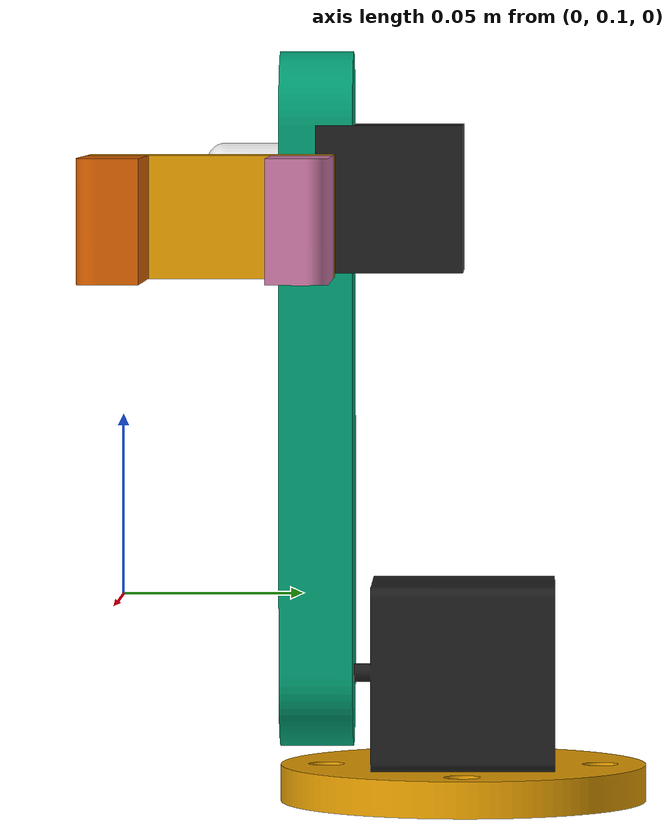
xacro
<?xml version="1.0" ?>
<robot name="arm" xmlns:xacro="http://www.ros.org/wiki/xacro">

<xacro:include filename="$(find arm_description)/urdf/materials.xacro" />
<xacro:include filename="$(find arm_description)/urdf/arm.trans" />
<xacro:include filename="$(find arm_description)/urdf/arm.gazebo" />
<link name="base_link">
  <inertial>
    <origin rpy="0 0 0" xyz="0.03545361982266208 0.19496756745179364 -0.04918171946780468"/>
    <mass value="0.5918760559363156"/>
    <inertia ixx="0.000373" ixy="-0.0" ixz="-0.0" iyy="0.000373" iyz="0.0" izz="0.000736"/>
  </inertial>
  <visual>
    <origin rpy="0 0 0" xyz="0 0 0"/>
    <geometry>
      <mesh filename="package://arm_description/meshes/base_link.stl" scale="0.001 0.001 0.001"/>
    </geometry>
    <material name="steel_satin"/>
  </visual>
  <collision>
    <origin rpy="0 0 0" xyz="0 0 0"/>
    <geometry>
      <mesh filename="package://arm_description/meshes/base_link.stl" scale="0.001 0.001 0.001"/>
    </geometry>
  </collision>
</link>

<link name="shoulder_v7_1">
  <inertial>
    <origin rpy="0 0 0" xyz="0.035453619822686105 0.19470965098903878 -0.029181719467804693"/>
    <mass value="0.17928408437421925"/>
    <inertia ixx="7.5e-05" ixy="0.0" ixz="-0.0" iyy="7.4e-05" iyz="-0.0" izz="7.5e-05"/>
  </inertial>
  <visual>
    <origin rpy="0 0 0" xyz="-0.0 -0.0 -0.01"/>
    <geometry>
      <mesh filename="package://arm_description/meshes/shoulder_v7_1.stl" scale="0.001 0.001 0.001"/>
    </geometry>
    <material name="plastic_glossy_black"/>
  </visual>
  <collision>
    <origin rpy="0 0 0" xyz="-0.0 -0.0 -0.01"/>
    <geometry>
      <mesh filename="package://arm_description/meshes/shoulder_v7_1.stl" scale="0.001 0.001 0.001"/>
    </geometry>
  </collision>
</link>

<link name="elbow_v12_1">
  <inertial>
    <origin rpy="0 0 0" xyz="0.03545361982268388 0.1593394922695728 0.04910742277427843"/>
    <mass value="0.13164405591331413"/>
    <inertia ixx="0.000355" ixy="-0.0" ixz="0.0" iyy="0.000367" iyz="5e-06" izz="2.1e-05"/>
  </inertial>
  <visual>
    <origin rpy="0 0 0" xyz="-0.0 0.005 -0.0"/>
    <geometry>
      <mesh filename="package://arm_description/meshes/elbow_v12_1.stl" scale="0.001 0.001 0.001"/>
    </geometry>
    <material name="polystyrene"/>
  </visual>
  <collision>
    <origin rpy="0 0 0" xyz="-0.0 0.005 -0.0"/>
    <geometry>
      <mesh filename="package://arm_description/meshes/elbow_v12_1.stl" scale="0.001 0.001 0.001"/>
    </geometry>
  </collision>
</link>

<link name="stepper_motor_v4_1">
  <inertial>
    <origin rpy="0 0 0" xyz="-3.8017731617684403e-07 0.019816612355657404 2.8082839953480487e-07"/>
    <mass value="0.09175959619142068"/>
    <inertia ixx="2.5e-05" ixy="0.0" ixz="0.0" iyy="2.4e-05" iyz="-0.0" izz="2.5e-05"/>
  </inertial>
  <visual>
    <origin rpy="0 0 0" xyz="-0.035454 -0.154968 -0.110818"/>
    <geometry>
      <mesh filename="package://arm_description/meshes/stepper_motor_v4_1.stl" scale="0.001 0.001 0.001"/>
    </geometry>
    <material name="plastic_glossy_black"/>
  </visual>
  <collision>
    <origin rpy="0 0 0" xyz="-0.035454 -0.154968 -0.110818"/>
    <geometry>
      <mesh filename="package://arm_description/meshes/stepper_motor_v4_1.stl" scale="0.001 0.001 0.001"/>
    </geometry>
  </collision>
</link>

<link name="fist_v8_1">
  <inertial>
    <origin rpy="0 0 0" xyz="0.09273384075257288 0.12499952606426352 0.1108182778828164"/>
    <mass value="0.10436047216159268"/>
    <inertia ixx="7e-06" ixy="0.0" ixz="-0.0" iyy="0.000328" iyz="-0.0" izz="0.000327"/>
  </inertial>
  <visual>
    <origin rpy="0 0 0" xyz="-0.02 -0.01 -0.0"/>
    <geometry>
      <mesh filename="package://arm_description/meshes/fist_v8_1.stl" scale="0.001 0.001 0.001"/>
    </geometry>
    <material name="plastic_glossy_white"/>
  </visual>
  <collision>
    <origin rpy="0 0 0" xyz="-0.02 -0.01 -0.0"/>
    <geometry>
      <mesh filename="package://arm_description/meshes/fist_v8_1.stl" scale="0.001 0.001 0.001"/>
    </geometry>
  </collision>
</link>

<link name="left_claw_v2_1">
  <inertial>
    <origin rpy="0 0 0" xyz="0.024827543222019743 4.5557702362822305e-05 2.8053219550128183e-07"/>
    <mass value="0.17536153168700247"/>
    <inertia ixx="1.6e-05" ixy="-0.0" ixz="0.0" iyy="4.9e-05" iyz="-0.0" izz="3.9e-05"/>
  </inertial>
  <visual>
    <origin rpy="0 0 0" xyz="-0.255454 -0.112468 -0.110818"/>
    <geometry>
      <mesh filename="package://arm_description/meshes/left_claw_v2_1.stl" scale="0.001 0.001 0.001"/>
    </geometry>
    <material name="steel_satin"/>
  </visual>
  <collision>
    <origin rpy="0 0 0" xyz="-0.255454 -0.112468 -0.110818"/>
    <geometry>
      <mesh filename="package://arm_description/meshes/left_claw_v2_1.stl" scale="0.001 0.001 0.001"/>
    </geometry>
  </collision>
</link>

<link name="right_claw_v2_1">
  <inertial>
    <origin rpy="0 0 0" xyz="0.024827543222019854 -4.64227987756749e-05 2.8053219545964847e-07"/>
    <mass value="0.17536153168700244"/>
    <inertia ixx="1.6e-05" ixy="0.0" ixz="0.0" iyy="4.9e-05" iyz="0.0" izz="3.9e-05"/>
  </inertial>
  <visual>
    <origin rpy="0 0 0" xyz="-0.255454 -0.157468 -0.110818"/>
    <geometry>
      <mesh filename="package://arm_description/meshes/right_claw_v2_1.stl" scale="0.001 0.001 0.001"/>
    </geometry>
    <material name="steel_satin"/>
  </visual>
  <collision>
    <origin rpy="0 0 0" xyz="-0.255454 -0.157468 -0.110818"/>
    <geometry>
      <mesh filename="package://arm_description/meshes/right_claw_v2_1.stl" scale="0.001 0.001 0.001"/>
    </geometry>
  </collision>
</link>

<link name="dc_motor_v3_1">
  <inertial>
    <origin rpy="0 0 0" xyz="0.012499619822683994 -4.3254820641935865e-07 2.8053219558454856e-07"/>
    <mass value="0.09633399347921827"/>
    <inertia ixx="8e-06" ixy="0.0" ixz="0.0" iyy="9e-06" iyz="0.0" izz="9e-06"/>
  </inertial>
  <visual>
    <origin rpy="0 0 0" xyz="-0.210454 -0.134968 -0.110818"/>
    <geometry>
      <mesh filename="package://arm_description/meshes/dc_motor_v3_1.stl" scale="0.001 0.001 0.001"/>
    </geometry>
    <material name="steel_satin"/>
  </visual>
  <collision>
    <origin rpy="0 0 0" xyz="-0.210454 -0.134968 -0.110818"/>
    <geometry>
      <mesh filename="package://arm_description/meshes/dc_motor_v3_1.stl" scale="0.001 0.001 0.001"/>
    </geometry>
  </collision>
</link>

<link name="eef_v4_1">
  <inertial>
    <origin rpy="0 0 0" xyz="0.045533767420098514 0.12496756745179359 0.11081828053219558"/>
    <mass value="0.03189621893711599"/>
    <inertia ixx="1.2e-05" ixy="0.0" ixz="0.0" iyy="3e-06" iyz="0.0" izz="1e-05"/>
  </inertial>
  <visual>
    <origin rpy="0 0 0" xyz="-0.2 -0.01 -0.0"/>
    <geometry>
      <mesh filename="package://arm_description/meshes/eef_v4_1.stl" scale="0.001 0.001 0.001"/>
    </geometry>
    <material name="surface_matte"/>
  </visual>
  <collision>
    <origin rpy="0 0 0" xyz="-0.2 -0.01 -0.0"/>
    <geometry>
      <mesh filename="package://arm_description/meshes/eef_v4_1.stl" scale="0.001 0.001 0.001"/>
    </geometry>
  </collision>
</link>

<joint name="Rev1" type="continuous">
  <origin rpy="0 0 0" xyz="0.0 0.0 0.01"/>
  <parent link="base_link"/>
  <child link="shoulder_v7_1"/>
  <axis xyz="0.0 -0.0 1.0"/>
</joint>

<joint name="Rev2" type="continuous">
  <origin rpy="0 0 0" xyz="0.0 -0.005 -0.01"/>
  <parent link="shoulder_v7_1"/>
  <child link="elbow_v12_1"/>
  <axis xyz="0.0 -1.0 0.0"/>
</joint>

<joint name="Rigid3" type="fixed">
  <origin rpy="0 0 0" xyz="0.035454 0.159968 0.110818"/>
  <parent link="elbow_v12_1"/>
  <child link="stepper_motor_v4_1"/>
</joint>

<joint name="Rev4" type="continuous">
  <origin rpy="0 0 0" xyz="-0.015454 -0.144968 -0.110818"/>
  <parent link="stepper_motor_v4_1"/>
  <child link="fist_v8_1"/>
  <axis xyz="0.0 -1.0 0.0"/>
</joint>

<joint name="Slider6" type="prismatic">
  <origin rpy="0 0 0" xyz="0.055454 0.102468 0.110818"/>
  <parent link="eef_v4_1"/>
  <child link="left_claw_v2_1"/>
  <axis xyz="0.0 1.0 -0.0"/>
  <limit effort="100" lower="0.0" upper="0.0" velocity="100"/>
</joint>

<joint name="Slider7" type="prismatic">
  <origin rpy="0 0 0" xyz="0.055454 0.147468 0.110818"/>
  <parent link="eef_v4_1"/>
  <child link="right_claw_v2_1"/>
  <axis xyz="0.0 1.0 -0.0"/>
  <limit effort="100" lower="0.0" upper="0.0" velocity="100"/>
</joint>

<joint name="Rigid8" type="fixed">
  <origin rpy="0 0 0" xyz="0.190454 0.124968 0.110818"/>
  <parent link="fist_v8_1"/>
  <child link="dc_motor_v3_1"/>
</joint>

<joint name="Rev9" type="continuous">
  <origin rpy="0 0 0" xyz="-0.010454 -0.124968 -0.110818"/>
  <parent link="dc_motor_v3_1"/>
  <child link="eef_v4_1"/>
  <axis xyz="1.0 0.0 0.0"/>
</joint>

</robot>
